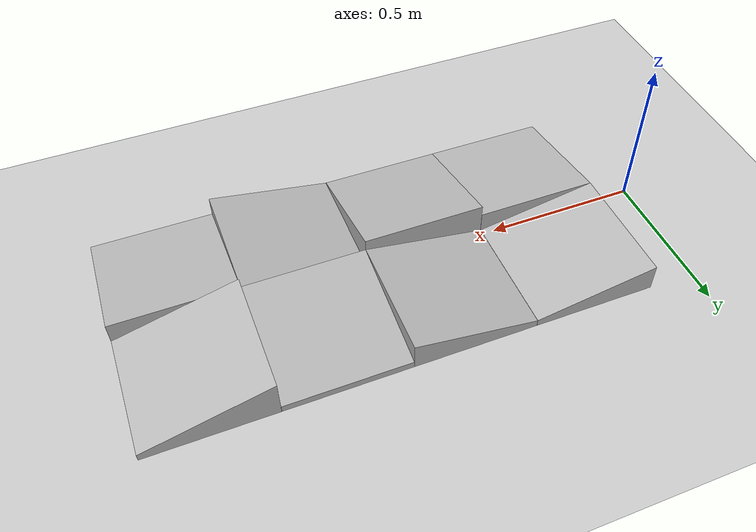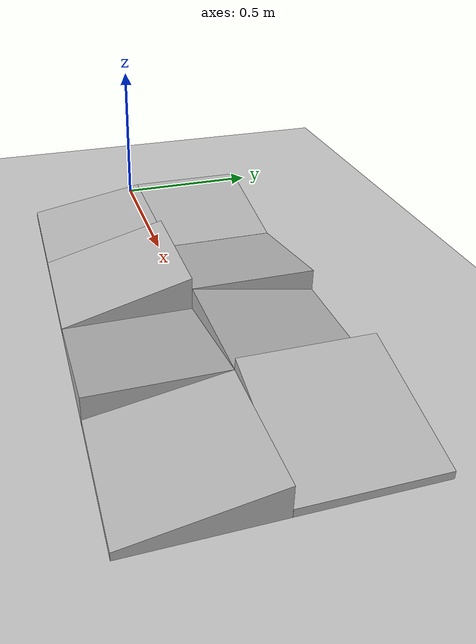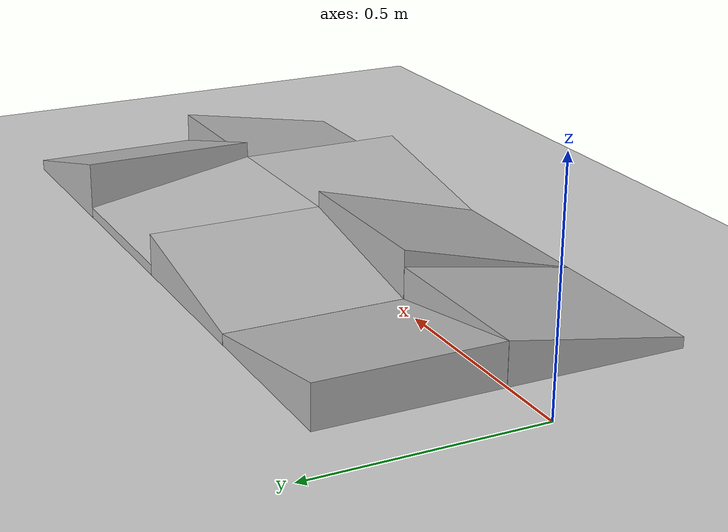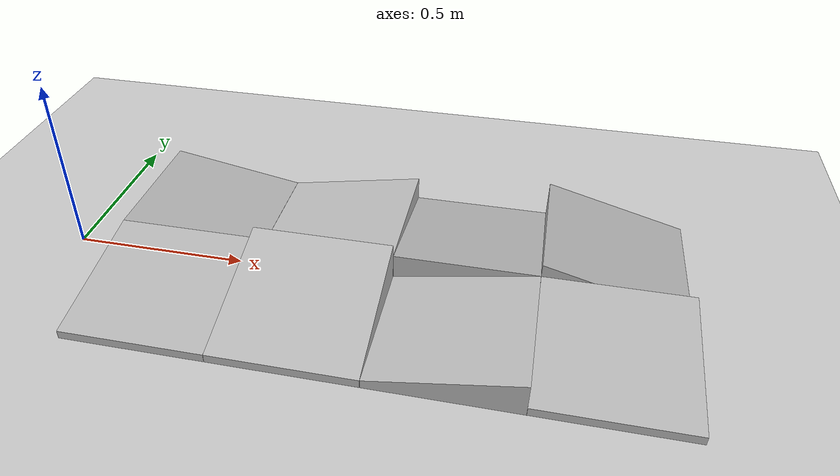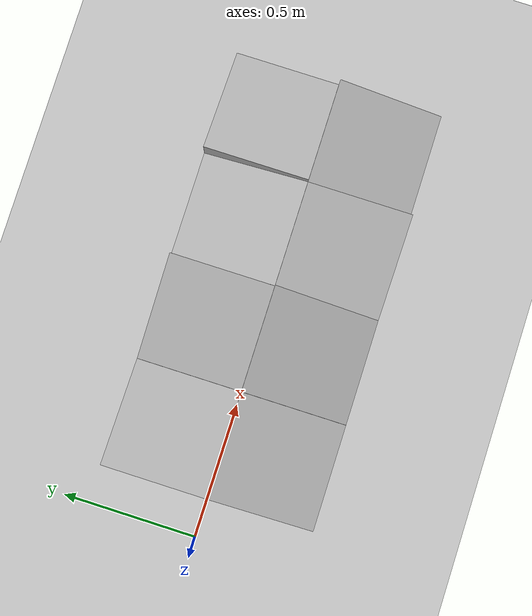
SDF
<?xml version="1.0" ?>
<sdf version="1.4">
  <world name="default">
    <physics type="ode">
      <gravity>0 0 -9.81</gravity>
      <ode>
        <solver>
          <type>quick</type>
          <iters>50</iters>
          <sor>1.4</sor>
        </solver>
        <constraints>
          <cfm>0.0</cfm>
          <erp>0.2</erp>
          <contact_max_correcting_vel>100.0</contact_max_correcting_vel>
          <contact_surface_layer>0.0</contact_surface_layer>
        </constraints>
      </ode>
      <real_time_update_rate>1000</real_time_update_rate>
      <max_step_size>0.001</max_step_size>
    </physics>

    <!-- A global light source -->
    <include>
      <uri>model://sun</uri>
    </include>

    <!-- A ground plane -->
    <include>
      <uri>model://ground_plane</uri>
    </include>

    <!-- Place a Block -->
    <include>
      <name>block_0</name>
      <static>1</static>
      <uri>model://Y_positive_10_lifted</uri>
      <pose> 0.35 0.2 0.0 0.0 0.0 0.0</pose>
    </include>

    <!-- Place a Block -->
    <include>
      <name>block_1</name>
      <static>1</static>
      <uri>model://Y_positive_10_lifted</uri>
      <pose> 0.35 -0.2 0.0 0.0 0.0 4.71238898038469</pose>
    </include>

    <!-- Place a Block -->
    <include>
      <name>block_2</name>
      <static>1</static>
      <uri>model://Y_positive_10_lifted</uri>
      <pose> 0.75 0.2 0.0 0.0 0.0 3.141592653589793</pose>
    </include>

    <!-- Place a Block -->
    <include>
      <name>block_3</name>
      <static>1</static>
      <uri>model://Y_positive_15_lifted</uri>
      <pose> 0.75 -0.2 0.0 0.0 0.0 4.71238898038469</pose>
    </include>

    <!-- Place a Block -->
    <include>
      <name>block_4</name>
      <static>1</static>
      <uri>model://Y_positive_10_lifted</uri>
      <pose> 1.1500000000000001 0.2 0.0 0.0 0.0 1.5707963267948966</pose>
    </include>

    <!-- Place a Block -->
    <include>
      <name>block_5</name>
      <static>1</static>
      <uri>model://Y_positive_10_lifted</uri>
      <pose> 1.1500000000000001 -0.2 0.0 0.0 0.0 3.141592653589793</pose>
    </include>

    <!-- Place a Block -->
    <include>
      <name>block_6</name>
      <static>1</static>
      <uri>model://Y_positive_15_lifted</uri>
      <pose> 1.55 0.2 0.0 0.0 0.0 0.0</pose>
    </include>

    <!-- Place a Block -->
    <include>
      <name>block_7</name>
      <static>1</static>
      <uri>model://Y_positive_10_lifted</uri>
      <pose> 1.55 -0.2 0.0 0.0 0.0 4.71238898038469</pose>
    </include>

  </world>
</sdf>

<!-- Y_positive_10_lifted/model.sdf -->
<sdf version="1.4">
  <model name="Y_positive_10_lifted">
    <link name="link">
      <pose>0 0 0 0 0 0</pose>
      <collision name="collision">
        <geometry>
          <mesh>
            <uri>model://Y_positive_10_lifted/meshes/10_degree_slope_lifted.stl</uri>
            <scale>0.00999 0.00999 0.00999</scale>
          </mesh>
        </geometry>
      </collision>
      <visual name="visual">
        <geometry>
          <mesh>
            <uri>model://Y_positive_10_lifted/meshes/10_degree_slope_lifted.stl</uri>
            <scale>0.00999 0.00999 0.00999</scale>
          </mesh>
        </geometry>
      </visual>
    </link>
  </model>
</sdf>

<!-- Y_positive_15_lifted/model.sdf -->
<sdf version="1.4">
  <model name="Y_positive_15_lifted">
    <link name="link">
      <pose>0 0 0 0 0 0</pose>
      <collision name="collision">
        <geometry>
          <mesh>
            <uri>model://Y_positive_15_lifted/meshes/15_degree_slope_lifted.stl</uri>
            <scale>0.00999 0.00999 0.00999</scale>
          </mesh>
        </geometry>
      </collision>
      <visual name="visual">
        <geometry>
          <mesh>
            <uri>model://Y_positive_15_lifted/meshes/15_degree_slope_lifted.stl</uri>
            <scale>0.00999 0.00999 0.00999</scale>
          </mesh>
        </geometry>
      </visual>
    </link>
  </model>
</sdf>
